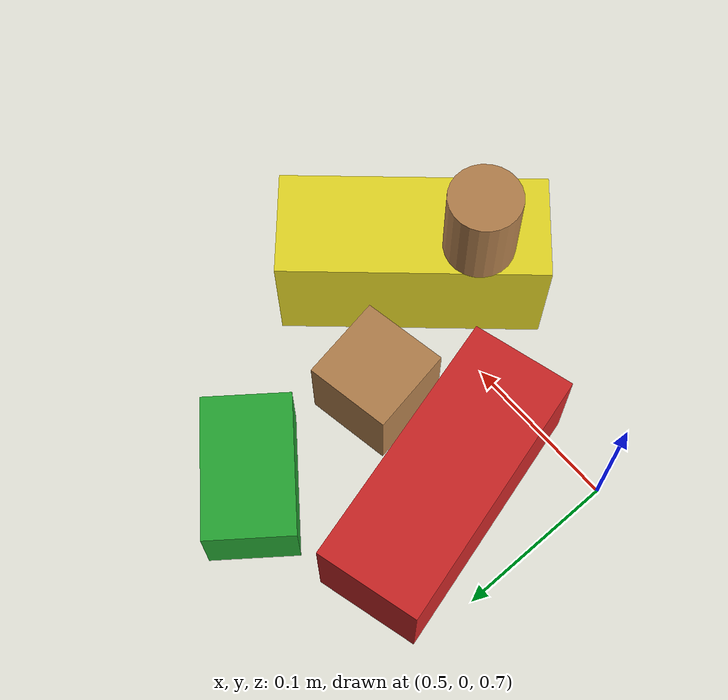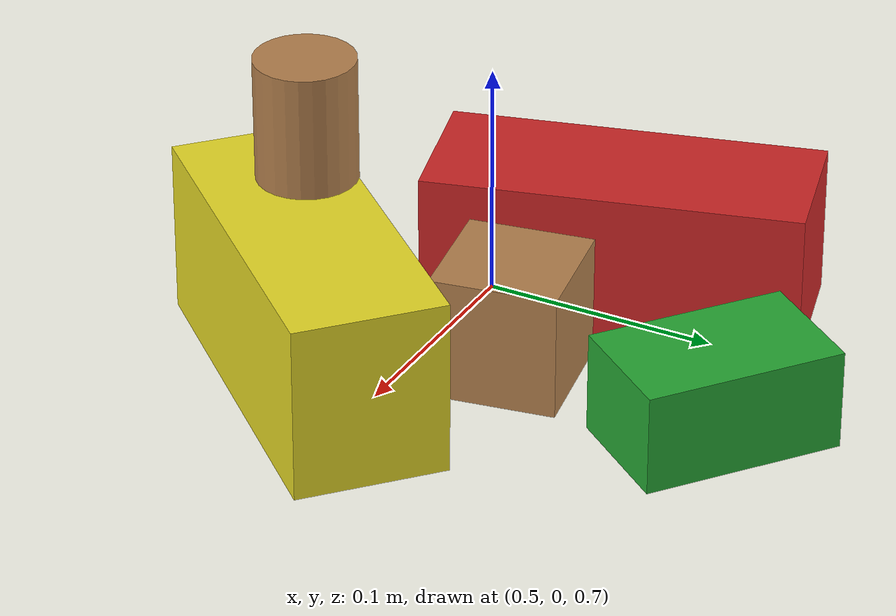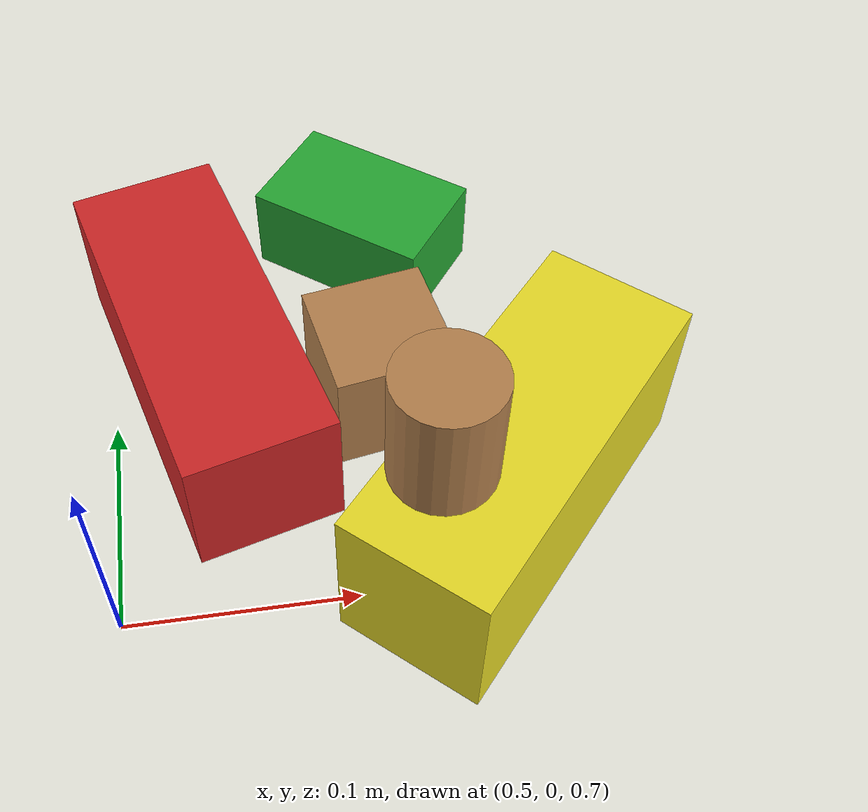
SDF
<sdf version="1.4">
 <world name="default">
  <light name="sun" type="directional">
   <pose>0 0 10 0 -0 0</pose>
   <diffuse>0.8 0.8 0.8 1</diffuse>
   <specular>0.2 0.2 0.2 1</specular>
   <attenuation>
    <range>1000</range>
    <constant>0.9</constant>
    <linear>0.01</linear>
    <quadratic>0.001</quadratic>
   </attenuation>
   <direction>-0.5 0.1 -0.9</direction>
  </light>
  <scene><shadows>0</shadows><ambient>0.4 0.4 0.4 1</ambient><background>0.7 0.7 0.7 1</background></scene>
  <model name="ground_plane">
   <static>1</static>
   <link name="link">
    <collision name="collision">
     <geometry><plane><normal>0 0 1</normal><size>100 100</size></plane></geometry>
     <surface><friction><ode><mu>100</mu><mu2>50</mu2></ode></friction></surface>
    </collision>
    <visual name="visual">
     <cast_shadows>0</cast_shadows>
     <geometry><plane><normal>0 0 1</normal><size>100 100</size></plane></geometry>
     <material>
      <script><uri>file://media/materials/scripts/gazebo.material</uri><name>Gazebo/Grey</name></script>
     </material>
    </visual>
    <velocity_decay><linear>0</linear><angular>0</angular></velocity_decay>
   </link>
  </model>
  <physics type="ode">
   <max_step_size>0.001</max_step_size>
   <real_time_factor>1</real_time_factor>
   <real_time_update_rate>1000</real_time_update_rate>
   <gravity>0 0 -9.8</gravity>
  </physics>
  <spherical_coordinates>
   <surface_model>EARTH_WGS84</surface_model>
   <latitude_deg>0</latitude_deg>
   <longitude_deg>0</longitude_deg>
   <elevation>0</elevation>
   <heading_deg>0</heading_deg>
  </spherical_coordinates>
  <model name="wood_cube_5cm">
   <link name="link">
    <pose>0 0 0.05 0 -0 0</pose>
    <inertial>
     <mass>0.01</mass>
     <inertia>
      <ixx>0.000101167</ixx>
      <ixy>0</ixy>
      <ixz>0</ixz>
      <iyy>6.1167e-05</iyy>
      <iyz>0</iyz>
      <izz>6.1167e-05</izz>
     </inertia>
    </inertial>
    <collision name="collision">
     <geometry><box><size>0.05 0.05 0.05</size></box></geometry>
     <surface><contact><ode><max_vel>0.1</max_vel><min_depth>0.001</min_depth></ode></contact></surface>
    </collision>
    <visual name="visual">
     <geometry><box><size>0.05 0.05 0.05</size></box></geometry>
     <material>
      <script><uri>file://media/materials/scripts/gazebo.material</uri><name>Gazebo/Wood</name></script>
     </material>
    </visual>
    <velocity_decay><linear>0</linear><angular>0</angular></velocity_decay>
   </link>
   <pose>0.617509 0.069896 0.714922 -0.002993 0.000435 0.173918</pose>
   <static>0</static>
  </model>
  <model name="wood_cylinder_5x2cm">
   <link name="link">
    <pose>0 0 0.05 0 -0 0</pose>
    <inertial>
     <mass>0.01</mass>
     <inertia>
      <ixx>0.000101167</ixx>
      <ixy>0</ixy>
      <ixz>0</ixz>
      <iyy>6.1167e-05</iyy>
      <iyz>0</iyz>
      <izz>6.1167e-05</izz>
     </inertia>
    </inertial>
    <collision name="collision">
     <geometry><cylinder><radius>0.02</radius><length>0.05</length></cylinder></geometry>
     <surface><contact><ode><max_vel>0.1</max_vel><min_depth>0.001</min_depth></ode></contact></surface>
    </collision>
    <visual name="visual">
     <geometry><cylinder><radius>0.02</radius><length>0.05</length></cylinder></geometry>
     <material>
      <script><uri>file://media/materials/scripts/gazebo.material</uri><name>Gazebo/Wood</name></script>
     </material>
    </visual>
    <velocity_decay><linear>0</linear><angular>0</angular></velocity_decay>
   </link>
   <pose>0.627427 -0.012641 0.784752 0.003953 -0.005142 2.76363</pose>
   <static>0</static>
  </model>
  <model name="rectangle_green">
   <link name="link">
    <pose>0 0 0.05 0 -0 0</pose>
    <inertial>
     <mass>0.01</mass>
     <inertia>
      <ixx>0.000101167</ixx>
      <ixy>0</ixy>
      <ixz>0</ixz>
      <iyy>6.1167e-05</iyy>
      <iyz>0</iyz>
      <izz>6.1167e-05</izz>
     </inertia>
    </inertial>
    <collision name="collision">
     <geometry><box><size>0.05 0.08 0.04</size></box></geometry>
     <surface><contact><ode><max_vel>0.1</max_vel><min_depth>0.001</min_depth></ode></contact></surface>
    </collision>
    <visual name="visual">
     <geometry><box><size>0.05 0.08 0.04</size></box></geometry>
     <material>
      <script><uri>file://media/materials/scripts/gazebo.material</uri><name>Gazebo/Green</name></script>
     </material>
    </visual>
    <velocity_decay><linear>0</linear><angular>0</angular></velocity_decay>
   </link>
   <pose>0.621769 0.156688 0.709678 0.001692 6.8e-05 -2.22627</pose>
   <static>0</static>
  </model>
  <model name="wood_rectangle">
   <link name="link">
    <pose>0 0 0.05 0 -0 0</pose>
    <inertial>
     <mass>0.01</mass>
     <inertia>
      <ixx>0.000101167</ixx>
      <ixy>0</ixy>
      <ixz>0</ixz>
      <iyy>6.1167e-05</iyy>
      <iyz>0</iyz>
      <izz>6.1167e-05</izz>
     </inertia>
    </inertial>
    <collision name="collision">
     <geometry><box><size>0.06 0.15 0.06</size></box></geometry>
     <surface><contact><ode><max_vel>0.1</max_vel><min_depth>0.001</min_depth></ode></contact></surface>
    </collision>
    <visual name="visual">
     <geometry><box><size>0.06 0.15 0.06</size></box></geometry>
     <material>
      <script><uri>file://media/materials/scripts/gazebo.material</uri><name>Gazebo/Red</name></script>
     </material>
    </visual>
    <velocity_decay><linear>0</linear><angular>0</angular></velocity_decay>
   </link>
   <pose>0.547195 0.08245 0.719991 6.9e-05 -0.000139 -2.87705</pose>
   <static>0</static>
  </model>
  <model name="wood_cube_10cm">
   <link name="link">
    <pose>0 0 0.05 0 -0 0</pose>
    <inertial>
     <mass>0.01</mass>
     <inertia>
      <ixx>0.000101167</ixx>
      <ixy>0</ixy>
      <ixz>0</ixz>
      <iyy>6.1167e-05</iyy>
      <iyz>0</iyz>
      <izz>6.1167e-05</izz>
     </inertia>
    </inertial>
    <collision name="collision">
     <geometry><box><size>0.06 0.15 0.07</size></box></geometry>
     <surface><contact><ode><max_vel>0.1</max_vel><min_depth>0.001</min_depth></ode></contact></surface>
    </collision>
    <visual name="visual">
     <geometry><box><size>0.06 0.15 0.07</size></box></geometry>
     <material>
      <script><uri>file://media/materials/scripts/gazebo.material</uri><name>Gazebo/Yellow</name></script>
     </material>
    </visual>
    <velocity_decay><linear>0</linear><angular>0</angular></velocity_decay>
   </link>
   <pose>0.660525 0.005666 0.724922 -0.001329 -0.002124 -0.731109</pose>
   <static>0</static>
  </model>
 </world>
</sdf>
